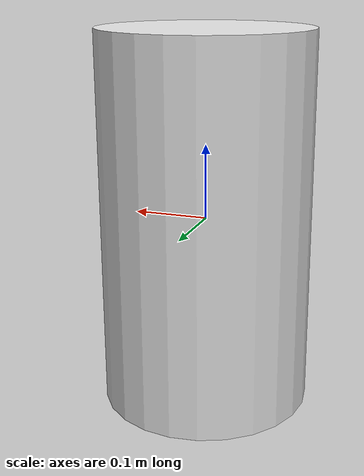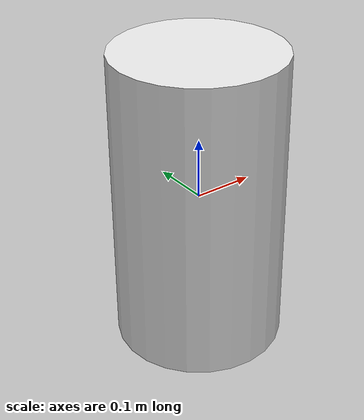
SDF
<?xml version="1.0"?>
<sdf version="1.7">
  <model name="cylinder">
    <!-- The model for a solid box of uniform density. -->
    <link name="box">
      <inertial>
        <mass>0.5</mass>
        <inertia>
          <ixx>0.042</ixx>
          <ixy>0</ixy>
          <ixz>0</ixz>
          <iyy>0.042</iyy>
          <iyz>0</iyz>
          <izz>0.042</izz>
        </inertia>
      </inertial>

      <visual name="cylinder_visual">
        <geometry>
          <cylinder>
            <length>0.50</length>
            <radius>0.14</radius>
          </cylinder>
        </geometry>
        <material>
          <diffuse>0.9 0.9 0.9 0.9</diffuse>
        </material>
      </visual>

      <collision name="cylinder_collision">
        <geometry>
          <cylinder>
            <length>0.499</length>
            <radius>0.14</radius>
          </cylinder>
        </geometry>
        <surface>
          <friction>
            <ode>
              <mu>0.5</mu>
              <mu2>0.5</mu2>
            </ode>
          </friction>
        </surface>
      </collision>

      <collision name="minus_z_front">
        <pose> 0.14 0 -0.25 0 0 0</pose>
        <geometry>
          <sphere>
            <radius>1e-7</radius>
          </sphere>
        </geometry>
        <surface>
          <friction>
            <ode>
              <mu>0.05</mu>
              <mu2>0.05</mu2>
            </ode>
          </friction>
        </surface>
      </collision>

      <collision name="minus_z_back">
        <pose> -0.14 0 -0.25 0 0 0</pose>
        <geometry>
          <sphere>
            <radius>1e-7</radius>
          </sphere>
        </geometry>
        <surface>
          <friction>
            <ode>
              <mu>0.05</mu>
              <mu2>0.05</mu2>
            </ode>
          </friction>
        </surface>
      </collision>

      <collision name="minus_z_left">
        <pose> 0 0.14 -0.25 0 0 0</pose>
        <geometry>
          <sphere>
            <radius>1e-7</radius>
          </sphere>
        </geometry>
        <surface>
          <friction>
            <ode>
              <mu>0.05</mu>
              <mu2>0.05</mu2>
            </ode>
          </friction>
        </surface>
      </collision>

      <collision name="minus_z_right">
        <pose> 0 -0.14 -0.25 0 0 0</pose>
        <geometry>
          <sphere>
            <radius>1e-7</radius>
          </sphere>
        </geometry>
        <surface>
          <friction>
            <ode>
              <mu>0.05</mu>
              <mu2>0.05</mu2>
            </ode>
          </friction>
        </surface>
      </collision>
    </link>
  </model>
</sdf>
